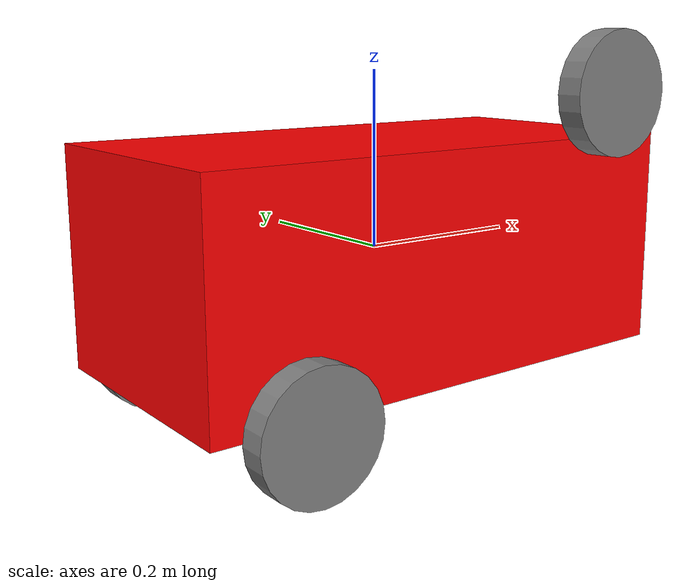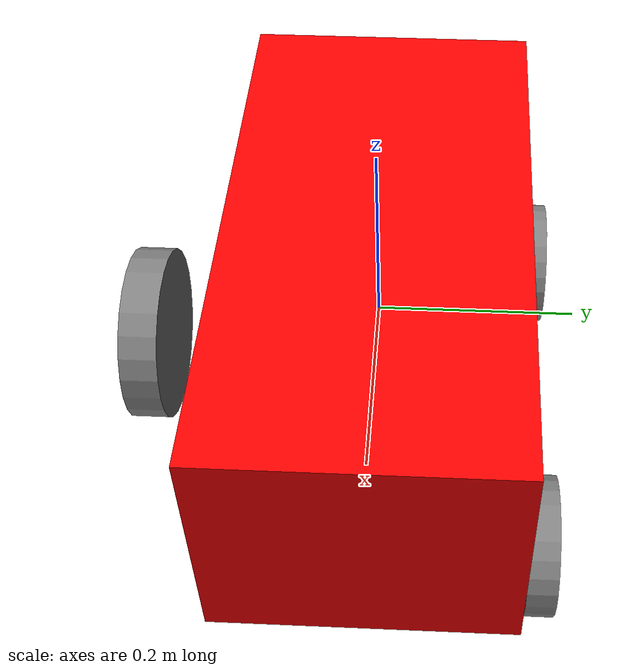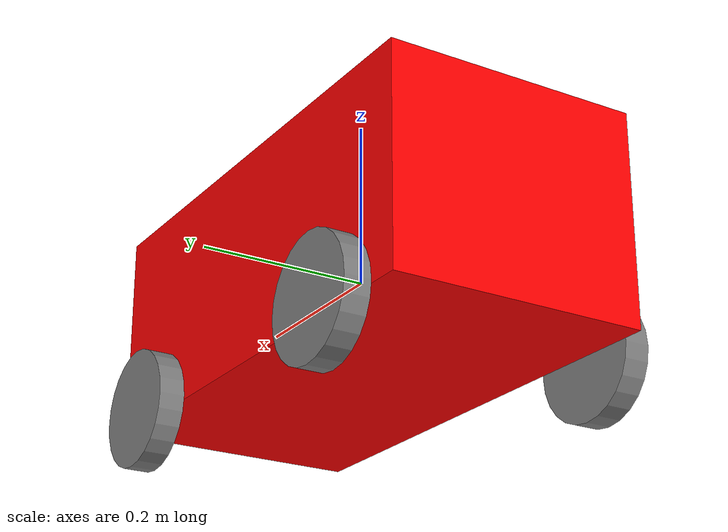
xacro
<?xml version="1.0"?>
<robot name="kurt" xmlns:xacro="http://ros.org/wiki/xacro">

  <xacro:property name="PI" value="3.14159" />

  <xacro:property name="size" value="0.6 0.3 0.25" />
  <link name="kurt_body">
    <collision>
      <origin xyz="0.0 0.0 0.0"/>
      <geometry>
        <box size="${size}" />
      </geometry>
    </collision>
    <inertial>
      <origin xyz="0.0 0.0 0.0" />
      <mass value="1.0" />
      <inertia  ixx="1.0" ixy="0.0"  ixz="0.0"  iyy="1.0"  iyz="0.0"  izz="1.0" />
    </inertial>
    <visual>
      <origin xyz="0.0 0.0 0.0"/>
      <geometry>
        <box size="${size}" />
      </geometry>
      <material name="red"><color rgba="1 0 0 1"/></material>
    </visual>
  </link>

  <xacro:property name="kurt_wheel_length" value="0.03" />
  <xacro:property name="kurt_wheel_radius" value="0.07" />
  <xacro:macro name="kurt_wheel" params="xyz rpy">
    <collision>
      <origin xyz="${xyz}" rpy="${rpy}"/>
      <geometry>
        <cylinder length="${kurt_wheel_length}" radius="${kurt_wheel_radius}" />
      </geometry>
    </collision>
    <inertial>
      <origin xyz="${xyz}" rpy="${rpy}"/>
      <mass value="1.0" />
      <inertia  ixx="1.0" ixy="0.0"  ixz="0.0"  iyy="1.0"  iyz="0.0"  izz="1.0" />
    </inertial>
    <visual>
      <origin xyz="${xyz}" rpy="${rpy}"/>
      <geometry>
        <cylinder length="${kurt_wheel_length}" radius="${kurt_wheel_radius}" />
      </geometry>
      <material name="grey"><color rgba="0.5 0.5 0.5 1"/></material>
    </visual>
  </xacro:macro>
  <link name="kurt_wheel_left_front">
    <xacro:kurt_wheel xyz="0.2 0.17 -0.125" rpy="${PI/2} 0.0 0.0" />
  </link>
  <link name="kurt_wheel_left_back">
    <xacro:kurt_wheel xyz="-0.2 0.17 -0.125" rpy="${PI/2} 0.0 0.0" />
  </link>
  <link name="kurt_wheel_right_front">
    <xacro:kurt_wheel xyz="0.2 -0.17 -0.125" rpy="${PI/2} 0.0 0.0" />
  </link>
  <link name="kurt_wheel_right_back">
    <xacro:kurt_wheel xyz="-0.2 -0.17 -0.125" rpy="${PI/2} 0.0 0.0" />
  </link>

  <joint name="body_to_wheel_left_front" type="continuous">
    <parent link="kurt_body"/>
    <child link="kurt_wheel_left_front"/>
  </joint>

  <joint name="body_to_wheel_left_back" type="continuous">
    <parent link="kurt_body"/>
    <child link="kurt_wheel_left_back"/>
  </joint>

  <joint name="body_to_wheel_right_front" type="continuous">
    <parent link="kurt_body"/>
    <child link="kurt_wheel_right_front"/>
    <axis xyz="1 0 0"/>
    <origin xyz="0 0 0.3"/>
  </joint>

  <joint name="body_to_wheel_right_back" type="continuous">
    <parent link="kurt_body"/>
    <child link="kurt_wheel_right_back"/>
  </joint>

  <gazebo reference="kurt_body">
    <material>Gazebo/Red</material>
  </gazebo>
  <gazebo reference="kurt_wheel_left_front">
    <material>Gazebo/Grey</material>
  </gazebo>
  <gazebo reference="kurt_wheel_left_back">
    <material>Gazebo/Grey</material>
  </gazebo>
  <gazebo reference="kurt_wheel_right_front">
    <material>Gazebo/Grey</material>
  </gazebo>
  <gazebo reference="kurt_wheel_right_back">
    <material>Gazebo/Grey</material>
  </gazebo>
</robot>
